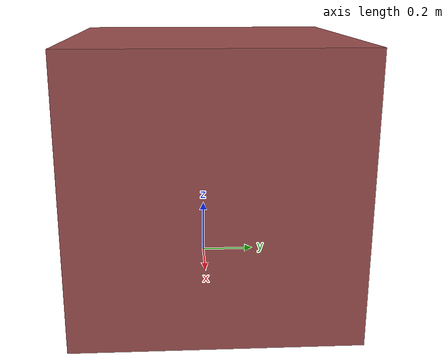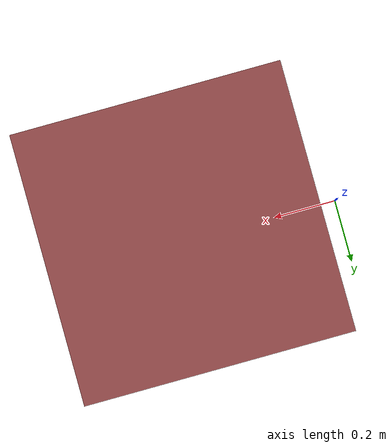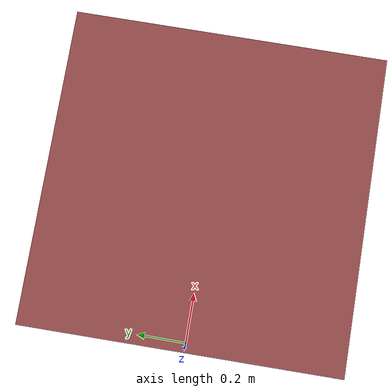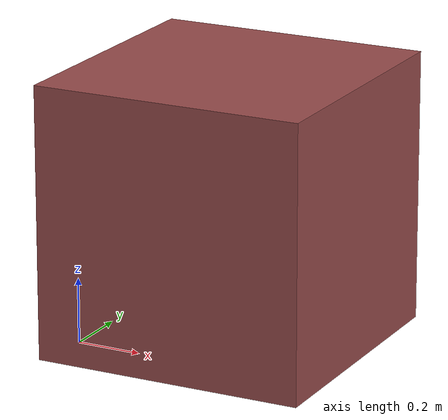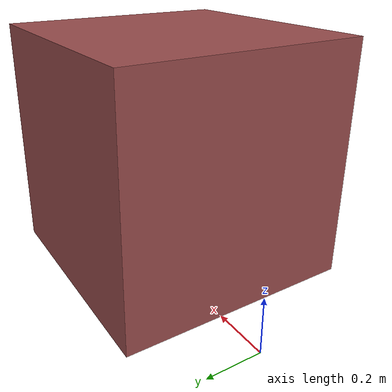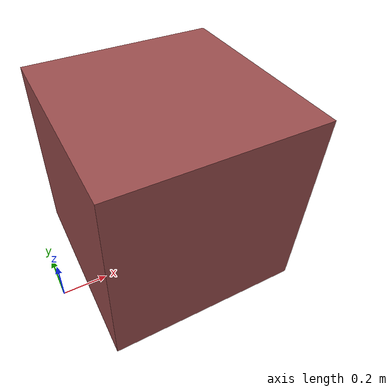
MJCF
<mujoco>

  <worldbody>
    <body name="target" pos="0.5 0 .5" quat="0 1 0 0" mocap="true">
      <geom type="box" size=".4 .4 .4" contype="0" conaffinity="0" rgba=".6 .3 .3 1.0"/>
    </body>
  </worldbody>
</mujoco>
